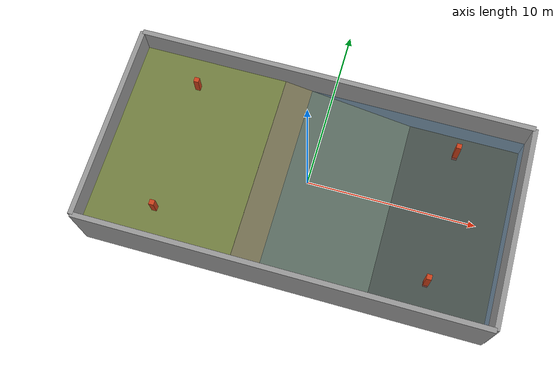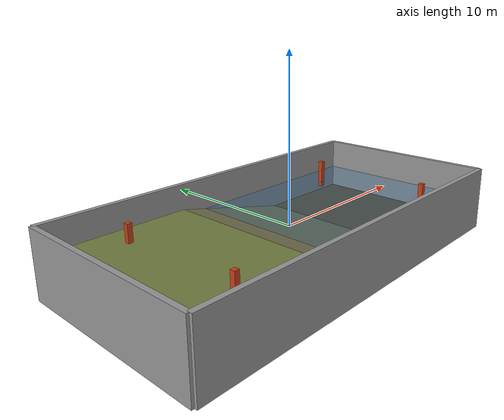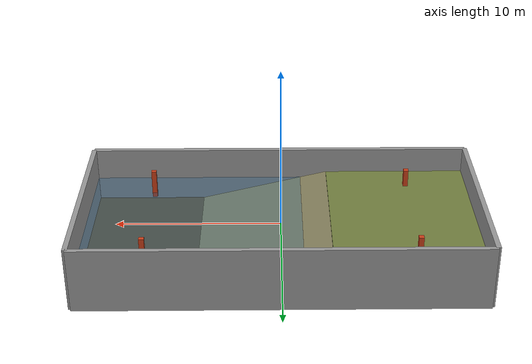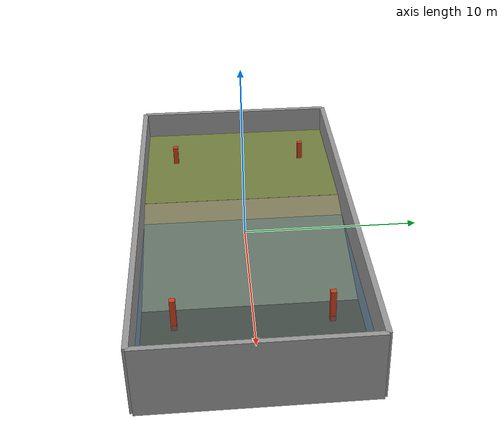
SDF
<?xml version='1.0' encoding='utf-8'?>
<sdf version="1.7">
  <world name="amphibious_shore">
    <physics name="marine_physics" type="ode">
      <max_step_size>0.001</max_step_size>
      <real_time_factor>1</real_time_factor>
    </physics>
    <gravity>0 0 -9.81</gravity>
    <plugin filename="ignition-gazebo-physics-system" name="ignition::gazebo::systems::Physics" />
    <plugin filename="ignition-gazebo-user-commands-system" name="ignition::gazebo::systems::UserCommands" />
    <plugin filename="ignition-gazebo-scene-broadcaster-system" name="ignition::gazebo::systems::SceneBroadcaster" />
    <plugin filename="ignition-gazebo-sensors-system" name="ignition::gazebo::systems::Sensors">
      <render_engine>ogre2</render_engine>
    </plugin>
    <plugin filename="ignition-gazebo-imu-system" name="ignition::gazebo::systems::Imu" />
    <plugin filename="ignition-gazebo-buoyancy-system" name="ignition::gazebo::systems::Buoyancy">
      <graded_buoyancy>
        <default_density>1025</default_density>
        <density_change>
          <above_depth>0</above_depth>
          <density>1.225</density>
        </density_change>
      </graded_buoyancy>
      <enable>lab_amphibious</enable>
    </plugin>
    <scene>
      <ambient>.3 .55 .6 1</ambient>
      <background>.05 .18 .25 1</background>
    </scene>
    <light name="sun" type="directional">
      <pose>0 0 10 0 0 0</pose>
      <diffuse>.8 .9 1 1</diffuse>
      <direction>-.3 .2 -1</direction>
    </light>
    <model name="seafloor">
      <static>true</static>
      <pose>0 0 -1.7 0 0 0</pose>
      <link name="link">
        <visual name="visual">
          <geometry>
            <box>
              <size>24 12 0.4</size>
            </box>
          </geometry>
          <material>
            <ambient>.35 .3 .2 1</ambient>
            <diffuse>.35 .3 .2 1</diffuse>
          </material>
        </visual>
        <collision name="collision">
          <geometry>
            <box>
              <size>24 12 0.4</size>
            </box>
          </geometry>
        </collision>
      </link>
    </model>
    <model name="water_surface">
      <static>true</static>
      <pose>0 0 0 0 0 0</pose>
      <link name="link">
        <visual name="visual">
          <geometry>
            <box>
              <size>24 12 0.01</size>
            </box>
          </geometry>
          <material>
            <ambient>0 .4 .7 .2</ambient>
            <diffuse>0 .4 .7 .2</diffuse>
          </material>
        </visual>
      </link>
    </model>
    <model name="west_bank">
      <static>true</static>
      <pose>-7.5 0 -0.55 0 0 0</pose>
      <link name="link">
        <visual name="visual">
          <geometry>
            <box>
              <size>9 12 1.9</size>
            </box>
          </geometry>
          <material>
            <ambient>.45 .5 .25 1</ambient>
            <diffuse>.45 .5 .25 1</diffuse>
          </material>
        </visual>
        <collision name="collision">
          <geometry>
            <box>
              <size>9 12 1.9</size>
            </box>
          </geometry>
        </collision>
      </link>
    </model>
    <model name="shore_ramp">
      <static>true</static>
      <pose>1 0 -.65 0 0.2331798006468164 0</pose>
      <link name="link">
        <visual name="visual">
          <geometry>
            <box>
              <size>8.25 12 0.2</size>
            </box>
          </geometry>
          <material>
            <ambient>.5 .48 .35 1</ambient>
            <diffuse>.5 .48 .35 1</diffuse>
          </material>
        </visual>
        <collision name="collision">
          <geometry>
            <box>
              <size>8.25 12 0.2</size>
            </box>
          </geometry>
        </collision>
      </link>
    </model>
    <model name="marker_0">
      <static>true</static>
      <pose>8 -4 0.6 0 0 0</pose>
      <link name="link">
        <visual name="visual">
          <geometry>
            <box>
              <size>0.3 0.3 1.8</size>
            </box>
          </geometry>
          <material>
            <ambient>.8 .25 .1 1</ambient>
            <diffuse>.8 .25 .1 1</diffuse>
          </material>
        </visual>
        <collision name="collision">
          <geometry>
            <box>
              <size>0.3 0.3 1.8</size>
            </box>
          </geometry>
        </collision>
      </link>
    </model>
    <model name="marker_1">
      <static>true</static>
      <pose>8 4 0.6 0 0 0</pose>
      <link name="link">
        <visual name="visual">
          <geometry>
            <box>
              <size>0.3 0.3 1.8</size>
            </box>
          </geometry>
          <material>
            <ambient>.8 .25 .1 1</ambient>
            <diffuse>.8 .25 .1 1</diffuse>
          </material>
        </visual>
        <collision name="collision">
          <geometry>
            <box>
              <size>0.3 0.3 1.8</size>
            </box>
          </geometry>
        </collision>
      </link>
    </model>
    <model name="marker_2">
      <static>true</static>
      <pose>-8 -4 0.6 0 0 0</pose>
      <link name="link">
        <visual name="visual">
          <geometry>
            <box>
              <size>0.3 0.3 1.8</size>
            </box>
          </geometry>
          <material>
            <ambient>.8 .25 .1 1</ambient>
            <diffuse>.8 .25 .1 1</diffuse>
          </material>
        </visual>
        <collision name="collision">
          <geometry>
            <box>
              <size>0.3 0.3 1.8</size>
            </box>
          </geometry>
        </collision>
      </link>
    </model>
    <model name="marker_3">
      <static>true</static>
      <pose>-8 4 0.6 0 0 0</pose>
      <link name="link">
        <visual name="visual">
          <geometry>
            <box>
              <size>0.3 0.3 1.8</size>
            </box>
          </geometry>
          <material>
            <ambient>.8 .25 .1 1</ambient>
            <diffuse>.8 .25 .1 1</diffuse>
          </material>
        </visual>
        <collision name="collision">
          <geometry>
            <box>
              <size>0.3 0.3 1.8</size>
            </box>
          </geometry>
        </collision>
      </link>
    </model>
    <model name="boundary_0">
      <static>true</static>
      <pose>12 0 0 0 0 0</pose>
      <link name="link">
        <visual name="visual">
          <geometry>
            <box>
              <size>0.3 12 4</size>
            </box>
          </geometry>
          <material>
            <ambient>.6 .6 .6 1</ambient>
            <diffuse>.6 .6 .6 1</diffuse>
          </material>
        </visual>
        <collision name="collision">
          <geometry>
            <box>
              <size>0.3 12 4</size>
            </box>
          </geometry>
        </collision>
      </link>
    </model>
    <model name="boundary_1">
      <static>true</static>
      <pose>-12 0 0 0 0 0</pose>
      <link name="link">
        <visual name="visual">
          <geometry>
            <box>
              <size>0.3 12 4</size>
            </box>
          </geometry>
          <material>
            <ambient>.6 .6 .6 1</ambient>
            <diffuse>.6 .6 .6 1</diffuse>
          </material>
        </visual>
        <collision name="collision">
          <geometry>
            <box>
              <size>0.3 12 4</size>
            </box>
          </geometry>
        </collision>
      </link>
    </model>
    <model name="boundary_2">
      <static>true</static>
      <pose>0 6 0 0 0 0</pose>
      <link name="link">
        <visual name="visual">
          <geometry>
            <box>
              <size>24 0.3 4</size>
            </box>
          </geometry>
          <material>
            <ambient>.6 .6 .6 1</ambient>
            <diffuse>.6 .6 .6 1</diffuse>
          </material>
        </visual>
        <collision name="collision">
          <geometry>
            <box>
              <size>24 0.3 4</size>
            </box>
          </geometry>
        </collision>
      </link>
    </model>
    <model name="boundary_3">
      <static>true</static>
      <pose>0 -6 0 0 0 0</pose>
      <link name="link">
        <visual name="visual">
          <geometry>
            <box>
              <size>24 0.3 4</size>
            </box>
          </geometry>
          <material>
            <ambient>.6 .6 .6 1</ambient>
            <diffuse>.6 .6 .6 1</diffuse>
          </material>
        </visual>
        <collision name="collision">
          <geometry>
            <box>
              <size>24 0.3 4</size>
            </box>
          </geometry>
        </collision>
      </link>
    </model>
  </world>
</sdf>
